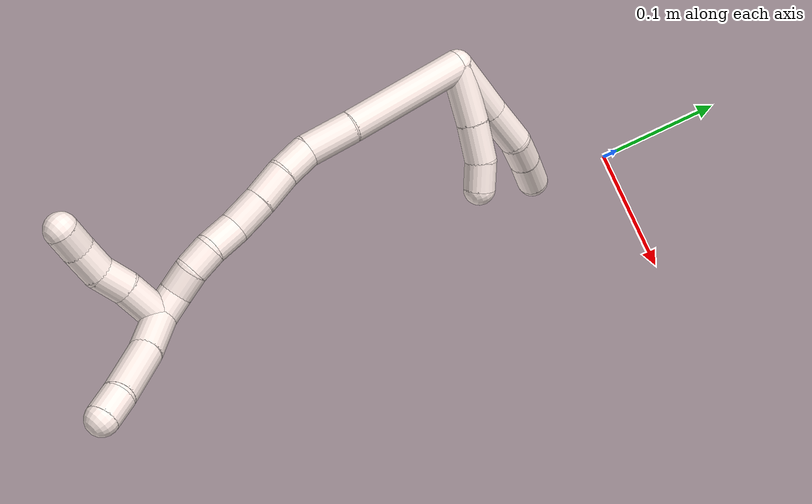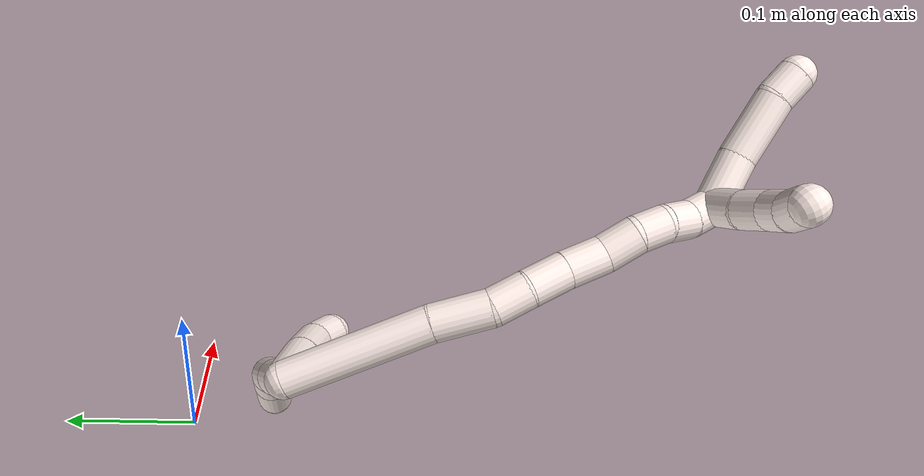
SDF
<sdf version="1.7">
 <world name="default">
  <model name="11">
   <static>0</static>
   <link name="11">
    <collision name="collision-cylinder-e_1_2_8">
     <pose>0.016928 -0.019171 -0.004304 1.79166 0.711177 0.868874</pose>
     <geometry><cylinder><radius>0.0125</radius><length>0.05187</length></cylinder></geometry>
     <surface>
      <friction><ode><mu>1.16</mu><mu2>1.16</mu2><slip1>0</slip1><slip2>0</slip2></ode></friction>
      <contact><ode><kp>1e+06</kp><kd>1</kd><max_vel>0</max_vel><min_depth>0.001</min_depth></ode></contact>
     </surface>
    </collision>
    <visual name="visual-cylinder-e_1_2_8">
     <pose>0.016928 -0.019171 -0.004304 1.79166 0.711177 0.868874</pose>
     <geometry><cylinder><radius>0.0125</radius><length>0.05187</length></cylinder></geometry>
     <material><ambient>1 0.933333 0.909804 1</ambient></material>
    </visual>
    <collision name="collision-cylinder-e_2_8_9">
     <pose>0.046234 -0.051642 -0.011946 1.81662 0.734256 0.916011</pose>
     <geometry><cylinder><radius>0.0125</radius><length>0.036946</length></cylinder></geometry>
     <surface>
      <friction><ode><mu>1.16</mu><mu2>1.16</mu2><slip1>0</slip1><slip2>0</slip2></ode></friction>
      <contact><ode><kp>1e+06</kp><kd>1</kd><max_vel>0</max_vel><min_depth>0.001</min_depth></ode></contact>
     </surface>
    </collision>
    <visual name="visual-cylinder-e_2_8_9">
     <pose>0.046234 -0.051642 -0.011946 1.81662 0.734256 0.916011</pose>
     <geometry><cylinder><radius>0.0125</radius><length>0.036946</length></cylinder></geometry>
     <material><ambient>1 0.933333 0.909804 1</ambient></material>
    </visual>
    <collision name="collision-cylinder-e_3_9_10">
     <pose>0.064056 -0.077329 -0.017603 1.75593 0.407824 0.488279</pose>
     <geometry><cylinder><radius>0.0125</radius><length>0.027454</length></cylinder></geometry>
     <surface>
      <friction><ode><mu>1.16</mu><mu2>1.16</mu2><slip1>0</slip1><slip2>0</slip2></ode></friction>
      <contact><ode><kp>1e+06</kp><kd>1</kd><max_vel>0</max_vel><min_depth>0.001</min_depth></ode></contact>
     </surface>
    </collision>
    <visual name="visual-cylinder-e_3_9_10">
     <pose>0.064056 -0.077329 -0.017603 1.75593 0.407824 0.488279</pose>
     <geometry><cylinder><radius>0.0125</radius><length>0.027454</length></cylinder></geometry>
     <material><ambient>1 0.933333 0.909804 1</ambient></material>
    </visual>
    <collision name="collision-cylinder-e_4_10_6">
     <pose>0.075053 -0.10537 -0.022845 1.75535 0.335492 0.402236</pose>
     <geometry><cylinder><radius>0.0125</radius><length>0.03373</length></cylinder></geometry>
     <surface>
      <friction><ode><mu>1.16</mu><mu2>1.16</mu2><slip1>0</slip1><slip2>0</slip2></ode></friction>
      <contact><ode><kp>1e+06</kp><kd>1</kd><max_vel>0</max_vel><min_depth>0.001</min_depth></ode></contact>
     </surface>
    </collision>
    <visual name="visual-cylinder-e_4_10_6">
     <pose>0.075053 -0.10537 -0.022845 1.75535 0.335492 0.402236</pose>
     <geometry><cylinder><radius>0.0125</radius><length>0.03373</length></cylinder></geometry>
     <material><ambient>1 0.933333 0.909804 1</ambient></material>
    </visual>
    <collision name="collision-cylinder-e_1_2_11">
     <pose>0.016303 -0.014422 0.006963 1.12099 0.794305 0.514833</pose>
     <geometry><cylinder><radius>0.0125</radius><length>0.045706</length></cylinder></geometry>
     <surface>
      <friction><ode><mu>1.16</mu><mu2>1.16</mu2><slip1>0</slip1><slip2>0</slip2></ode></friction>
      <contact><ode><kp>1e+06</kp><kd>1</kd><max_vel>0</max_vel><min_depth>0.001</min_depth></ode></contact>
     </surface>
    </collision>
    <visual name="visual-cylinder-e_1_2_11">
     <pose>0.016303 -0.014422 0.006963 1.12099 0.794305 0.514833</pose>
     <geometry><cylinder><radius>0.0125</radius><length>0.045706</length></cylinder></geometry>
     <material><ambient>1 0.933333 0.909804 1</ambient></material>
    </visual>
    <collision name="collision-cylinder-e_2_11_12">
     <pose>0.043153 -0.039097 0.019199 1.09583 0.740939 0.465448</pose>
     <geometry><cylinder><radius>0.0125</radius><length>0.031251</length></cylinder></geometry>
     <surface>
      <friction><ode><mu>1.16</mu><mu2>1.16</mu2><slip1>0</slip1><slip2>0</slip2></ode></friction>
      <contact><ode><kp>1e+06</kp><kd>1</kd><max_vel>0</max_vel><min_depth>0.001</min_depth></ode></contact>
     </surface>
    </collision>
    <visual name="visual-cylinder-e_2_11_12">
     <pose>0.043153 -0.039097 0.019199 1.09583 0.740939 0.465448</pose>
     <geometry><cylinder><radius>0.0125</radius><length>0.031251</length></cylinder></geometry>
     <material><ambient>1 0.933333 0.909804 1</ambient></material>
    </visual>
    <collision name="collision-cylinder-e_3_12_5">
     <pose>0.05959 -0.057072 0.030669 0.894515 0.536668 0.262275</pose>
     <geometry><cylinder><radius>0.0125</radius><length>0.023043</length></cylinder></geometry>
     <surface>
      <friction><ode><mu>1.16</mu><mu2>1.16</mu2><slip1>0</slip1><slip2>0</slip2></ode></friction>
      <contact><ode><kp>1e+06</kp><kd>1</kd><max_vel>0</max_vel><min_depth>0.001</min_depth></ode></contact>
     </surface>
    </collision>
    <visual name="visual-cylinder-e_3_12_5">
     <pose>0.05959 -0.057072 0.030669 0.894515 0.536668 0.262275</pose>
     <geometry><cylinder><radius>0.0125</radius><length>0.023043</length></cylinder></geometry>
     <material><ambient>1 0.933333 0.909804 1</ambient></material>
    </visual>
    <collision name="collision-cylinder-e_1_2_13">
     <pose>-0.010584 0.002696 0.048643 -0.055357 -0.213924 0.005945</pose>
     <geometry><cylinder><radius>0.0125</radius><length>0.099709</length></cylinder></geometry>
     <surface>
      <friction><ode><mu>1.16</mu><mu2>1.16</mu2><slip1>0</slip1><slip2>0</slip2></ode></friction>
      <contact><ode><kp>1e+06</kp><kd>1</kd><max_vel>0</max_vel><min_depth>0.001</min_depth></ode></contact>
     </surface>
    </collision>
    <visual name="visual-cylinder-e_1_2_13">
     <pose>-0.010584 0.002696 0.048643 -0.055357 -0.213924 0.005945</pose>
     <geometry><cylinder><radius>0.0125</radius><length>0.099709</length></cylinder></geometry>
     <material><ambient>1 0.933333 0.909804 1</ambient></material>
    </visual>
    <collision name="collision-cylinder-e_2_13_14">
     <pose>-0.026433 0.004623 0.115623 0.04186 -0.27938 -0.005887</pose>
     <geometry><cylinder><radius>0.0125</radius><length>0.038185</length></cylinder></geometry>
     <surface>
      <friction><ode><mu>1.16</mu><mu2>1.16</mu2><slip1>0</slip1><slip2>0</slip2></ode></friction>
      <contact><ode><kp>1e+06</kp><kd>1</kd><max_vel>0</max_vel><min_depth>0.001</min_depth></ode></contact>
     </surface>
    </collision>
    <visual name="visual-cylinder-e_2_13_14">
     <pose>-0.026433 0.004623 0.115623 0.04186 -0.27938 -0.005887</pose>
     <geometry><cylinder><radius>0.0125</radius><length>0.038185</length></cylinder></geometry>
     <material><ambient>1 0.933333 0.909804 1</ambient></material>
    </visual>
    <collision name="collision-cylinder-e_3_14_15">
     <pose>-0.031846 0.003556 0.146242 0.024381 -0.012076 -0.000147</pose>
     <geometry><cylinder><radius>0.0125</radius><length>0.024575</length></cylinder></geometry>
     <surface>
      <friction><ode><mu>1.16</mu><mu2>1.16</mu2><slip1>0</slip1><slip2>0</slip2></ode></friction>
      <contact><ode><kp>1e+06</kp><kd>1</kd><max_vel>0</max_vel><min_depth>0.001</min_depth></ode></contact>
     </surface>
    </collision>
    <visual name="visual-cylinder-e_3_14_15">
     <pose>-0.031846 0.003556 0.146242 0.024381 -0.012076 -0.000147</pose>
     <geometry><cylinder><radius>0.0125</radius><length>0.024575</length></cylinder></geometry>
     <material><ambient>1 0.933333 0.909804 1</ambient></material>
    </visual>
    <collision name="collision-cylinder-e_4_15_16">
     <pose>-0.031088 0.001109 0.17149 0.164099 0.068833 0.005663</pose>
     <geometry><cylinder><radius>0.0125</radius><length>0.026345</length></cylinder></geometry>
     <surface>
      <friction><ode><mu>1.16</mu><mu2>1.16</mu2><slip1>0</slip1><slip2>0</slip2></ode></friction>
      <contact><ode><kp>1e+06</kp><kd>1</kd><max_vel>0</max_vel><min_depth>0.001</min_depth></ode></contact>
     </surface>
    </collision>
    <visual name="visual-cylinder-e_4_15_16">
     <pose>-0.031088 0.001109 0.17149 0.164099 0.068833 0.005663</pose>
     <geometry><cylinder><radius>0.0125</radius><length>0.026345</length></cylinder></geometry>
     <material><ambient>1 0.933333 0.909804 1</ambient></material>
    </visual>
    <collision name="collision-cylinder-e_5_16_17">
     <pose>-0.03023 -0.003489 0.197759 0.18224 -0.003481 -0.000318</pose>
     <geometry><cylinder><radius>0.0125</radius><length>0.027058</length></cylinder></geometry>
     <surface>
      <friction><ode><mu>1.16</mu><mu2>1.16</mu2><slip1>0</slip1><slip2>0</slip2></ode></friction>
      <contact><ode><kp>1e+06</kp><kd>1</kd><max_vel>0</max_vel><min_depth>0.001</min_depth></ode></contact>
     </surface>
    </collision>
    <visual name="visual-cylinder-e_5_16_17">
     <pose>-0.03023 -0.003489 0.197759 0.18224 -0.003481 -0.000318</pose>
     <geometry><cylinder><radius>0.0125</radius><length>0.027058</length></cylinder></geometry>
     <material><ambient>1 0.933333 0.909804 1</ambient></material>
    </visual>
    <collision name="collision-cylinder-e_6_17_18">
     <pose>-0.030516 -0.005034 0.223056 -0.075527 -0.019905 0.000752</pose>
     <geometry><cylinder><radius>0.0125</radius><length>0.024057</length></cylinder></geometry>
     <surface>
      <friction><ode><mu>1.16</mu><mu2>1.16</mu2><slip1>0</slip1><slip2>0</slip2></ode></friction>
      <contact><ode><kp>1e+06</kp><kd>1</kd><max_vel>0</max_vel><min_depth>0.001</min_depth></ode></contact>
     </surface>
    </collision>
    <visual name="visual-cylinder-e_6_17_18">
     <pose>-0.030516 -0.005034 0.223056 -0.075527 -0.019905 0.000752</pose>
     <geometry><cylinder><radius>0.0125</radius><length>0.024057</length></cylinder></geometry>
     <material><ambient>1 0.933333 0.909804 1</ambient></material>
    </visual>
    <collision name="collision-cylinder-e_7_18_19">
     <pose>-0.03065 -0.006498 0.24479 0.23877 0.010476 0.001257</pose>
     <geometry><cylinder><radius>0.0125</radius><length>0.020053</length></cylinder></geometry>
     <surface>
      <friction><ode><mu>1.16</mu><mu2>1.16</mu2><slip1>0</slip1><slip2>0</slip2></ode></friction>
      <contact><ode><kp>1e+06</kp><kd>1</kd><max_vel>0</max_vel><min_depth>0.001</min_depth></ode></contact>
     </surface>
    </collision>
    <visual name="visual-cylinder-e_7_18_19">
     <pose>-0.03065 -0.006498 0.24479 0.23877 0.010476 0.001257</pose>
     <geometry><cylinder><radius>0.0125</radius><length>0.020053</length></cylinder></geometry>
     <material><ambient>1 0.933333 0.909804 1</ambient></material>
    </visual>
    <collision name="collision-cylinder-e_8_19_20">
     <pose>-0.02994 -0.013989 0.2631 0.538647 0.060585 0.016728</pose>
     <geometry><cylinder><radius>0.0125</radius><length>0.02</length></cylinder></geometry>
     <surface>
      <friction><ode><mu>1.16</mu><mu2>1.16</mu2><slip1>0</slip1><slip2>0</slip2></ode></friction>
      <contact><ode><kp>1e+06</kp><kd>1</kd><max_vel>0</max_vel><min_depth>0.001</min_depth></ode></contact>
     </surface>
    </collision>
    <visual name="visual-cylinder-e_8_19_20">
     <pose>-0.02994 -0.013989 0.2631 0.538647 0.060585 0.016728</pose>
     <geometry><cylinder><radius>0.0125</radius><length>0.02</length></cylinder></geometry>
     <material><ambient>1 0.933333 0.909804 1</ambient></material>
    </visual>
    <collision name="collision-cylinder-e_9_20_1">
     <pose>-0.027768 -0.021629 0.281227 0.257658 0.157153 0.0204</pose>
     <geometry><cylinder><radius>0.0125</radius><length>0.020018</length></cylinder></geometry>
     <surface>
      <friction><ode><mu>1.16</mu><mu2>1.16</mu2><slip1>0</slip1><slip2>0</slip2></ode></friction>
      <contact><ode><kp>1e+06</kp><kd>1</kd><max_vel>0</max_vel><min_depth>0.001</min_depth></ode></contact>
     </surface>
    </collision>
    <visual name="visual-cylinder-e_9_20_1">
     <pose>-0.027768 -0.021629 0.281227 0.257658 0.157153 0.0204</pose>
     <geometry><cylinder><radius>0.0125</radius><length>0.020018</length></cylinder></geometry>
     <material><ambient>1 0.933333 0.909804 1</ambient></material>
    </visual>
    <collision name="collision-cylinder-e_1_1_21">
     <pose>-0.039411 -0.014439 0.293673 -1.28183 -0.916621 0.705277</pose>
     <geometry><cylinder><radius>0.0125</radius><length>0.033292</length></cylinder></geometry>
     <surface>
      <friction><ode><mu>1.16</mu><mu2>1.16</mu2><slip1>0</slip1><slip2>0</slip2></ode></friction>
      <contact><ode><kp>1e+06</kp><kd>1</kd><max_vel>0</max_vel><min_depth>0.001</min_depth></ode></contact>
     </surface>
    </collision>
    <visual name="visual-cylinder-e_1_1_21">
     <pose>-0.039411 -0.014439 0.293673 -1.28183 -0.916621 0.705277</pose>
     <geometry><cylinder><radius>0.0125</radius><length>0.033292</length></cylinder></geometry>
     <material><ambient>1 0.933333 0.909804 1</ambient></material>
    </visual>
    <collision name="collision-cylinder-e_2_21_22">
     <pose>-0.061523 0.001387 0.300278 -1.02451 -0.893616 0.526348</pose>
     <geometry><cylinder><radius>0.0125</radius><length>0.022847</length></cylinder></geometry>
     <surface>
      <friction><ode><mu>1.16</mu><mu2>1.16</mu2><slip1>0</slip1><slip2>0</slip2></ode></friction>
      <contact><ode><kp>1e+06</kp><kd>1</kd><max_vel>0</max_vel><min_depth>0.001</min_depth></ode></contact>
     </surface>
    </collision>
    <visual name="visual-cylinder-e_2_21_22">
     <pose>-0.061523 0.001387 0.300278 -1.02451 -0.893616 0.526348</pose>
     <geometry><cylinder><radius>0.0125</radius><length>0.022847</length></cylinder></geometry>
     <material><ambient>1 0.933333 0.909804 1</ambient></material>
    </visual>
    <collision name="collision-cylinder-e_3_22_23">
     <pose>-0.078879 0.015314 0.304917 -1.45343 -0.821376 0.738712</pose>
     <geometry><cylinder><radius>0.0125</radius><length>0.023092</length></cylinder></geometry>
     <surface>
      <friction><ode><mu>1.16</mu><mu2>1.16</mu2><slip1>0</slip1><slip2>0</slip2></ode></friction>
      <contact><ode><kp>1e+06</kp><kd>1</kd><max_vel>0</max_vel><min_depth>0.001</min_depth></ode></contact>
     </surface>
    </collision>
    <visual name="visual-cylinder-e_3_22_23">
     <pose>-0.078879 0.015314 0.304917 -1.45343 -0.821376 0.738712</pose>
     <geometry><cylinder><radius>0.0125</radius><length>0.023092</length></cylinder></geometry>
     <material><ambient>1 0.933333 0.909804 1</ambient></material>
    </visual>
    <collision name="collision-cylinder-e_4_23_4">
     <pose>-0.093583 0.031359 0.306827 -1.45127 -0.645969 0.577241</pose>
     <geometry><cylinder><radius>0.0125</radius><length>0.020769</length></cylinder></geometry>
     <surface>
      <friction><ode><mu>1.16</mu><mu2>1.16</mu2><slip1>0</slip1><slip2>0</slip2></ode></friction>
      <contact><ode><kp>1e+06</kp><kd>1</kd><max_vel>0</max_vel><min_depth>0.001</min_depth></ode></contact>
     </surface>
    </collision>
    <visual name="visual-cylinder-e_4_23_4">
     <pose>-0.093583 0.031359 0.306827 -1.45127 -0.645969 0.577241</pose>
     <geometry><cylinder><radius>0.0125</radius><length>0.020769</length></cylinder></geometry>
     <material><ambient>1 0.933333 0.909804 1</ambient></material>
    </visual>
    <collision name="collision-cylinder-e_1_1_24">
     <pose>-0.018715 -0.017821 0.305463 -0.406987 0.438082 -0.091808</pose>
     <geometry><cylinder><radius>0.0125</radius><length>0.035299</length></cylinder></geometry>
     <surface>
      <friction><ode><mu>1.16</mu><mu2>1.16</mu2><slip1>0</slip1><slip2>0</slip2></ode></friction>
      <contact><ode><kp>1e+06</kp><kd>1</kd><max_vel>0</max_vel><min_depth>0.001</min_depth></ode></contact>
     </surface>
    </collision>
    <visual name="visual-cylinder-e_1_1_24">
     <pose>-0.018715 -0.017821 0.305463 -0.406987 0.438082 -0.091808</pose>
     <geometry><cylinder><radius>0.0125</radius><length>0.035299</length></cylinder></geometry>
     <material><ambient>1 0.933333 0.909804 1</ambient></material>
    </visual>
    <collision name="collision-cylinder-e_2_24_25">
     <pose>-0.004392 -0.002731 0.338984 -0.435343 0.317781 -0.070853</pose>
     <geometry><cylinder><radius>0.0125</radius><length>0.043753</length></cylinder></geometry>
     <surface>
      <friction><ode><mu>1.16</mu><mu2>1.16</mu2><slip1>0</slip1><slip2>0</slip2></ode></friction>
      <contact><ode><kp>1e+06</kp><kd>1</kd><max_vel>0</max_vel><min_depth>0.001</min_depth></ode></contact>
     </surface>
    </collision>
    <visual name="visual-cylinder-e_2_24_25">
     <pose>-0.004392 -0.002731 0.338984 -0.435343 0.317781 -0.070853</pose>
     <geometry><cylinder><radius>0.0125</radius><length>0.043753</length></cylinder></geometry>
     <material><ambient>1 0.933333 0.909804 1</ambient></material>
    </visual>
    <collision name="collision-cylinder-e_3_25_3">
     <pose>0.004852 0.008223 0.367782 -0.216468 0.23201 -0.025322</pose>
     <geometry><cylinder><radius>0.0125</radius><length>0.020948</length></cylinder></geometry>
     <surface>
      <friction><ode><mu>1.16</mu><mu2>1.16</mu2><slip1>0</slip1><slip2>0</slip2></ode></friction>
      <contact><ode><kp>1e+06</kp><kd>1</kd><max_vel>0</max_vel><min_depth>0.001</min_depth></ode></contact>
     </surface>
    </collision>
    <visual name="visual-cylinder-e_3_25_3">
     <pose>0.004852 0.008223 0.367782 -0.216468 0.23201 -0.025322</pose>
     <geometry><cylinder><radius>0.0125</radius><length>0.020948</length></cylinder></geometry>
     <material><ambient>1 0.933333 0.909804 1</ambient></material>
    </visual>
    <collision name="collision-sphere-3">
     <pose>0.00726 0.010412 0.377737 0 -0 0</pose>
     <geometry><sphere><radius>0.0125</radius></sphere></geometry>
     <surface>
      <friction><ode><mu>1.16</mu><mu2>1.16</mu2><slip1>0</slip1><slip2>0</slip2></ode></friction>
      <contact><ode><kp>1e+06</kp><kd>1</kd><max_vel>0</max_vel><min_depth>0.001</min_depth></ode></contact>
     </surface>
    </collision>
    <visual name="visual-sphere-3">
     <pose>0.00726 0.010412 0.377737 0 -0 0</pose>
     <geometry><sphere><radius>0.0125</radius></sphere></geometry>
     <material><ambient>1 0.933333 0.909804 1</ambient></material>
    </visual>
    <collision name="collision-sphere-25">
     <pose>0.002443 0.006033 0.357826 0 -0 0</pose>
     <geometry><sphere><radius>0.0125</radius></sphere></geometry>
     <surface>
      <friction><ode><mu>1.16</mu><mu2>1.16</mu2><slip1>0</slip1><slip2>0</slip2></ode></friction>
      <contact><ode><kp>1e+06</kp><kd>1</kd><max_vel>0</max_vel><min_depth>0.001</min_depth></ode></contact>
     </surface>
    </collision>
    <visual name="visual-sphere-25">
     <pose>0.002443 0.006033 0.357826 0 -0 0</pose>
     <geometry><sphere><radius>0.0125</radius></sphere></geometry>
     <material><ambient>1 0.933333 0.909804 1</ambient></material>
    </visual>
    <collision name="collision-sphere-24">
     <pose>-0.011228 -0.011494 0.320141 0 -0 0</pose>
     <geometry><sphere><radius>0.0125</radius></sphere></geometry>
     <surface>
      <friction><ode><mu>1.16</mu><mu2>1.16</mu2><slip1>0</slip1><slip2>0</slip2></ode></friction>
      <contact><ode><kp>1e+06</kp><kd>1</kd><max_vel>0</max_vel><min_depth>0.001</min_depth></ode></contact>
     </surface>
    </collision>
    <visual name="visual-sphere-24">
     <pose>-0.011228 -0.011494 0.320141 0 -0 0</pose>
     <geometry><sphere><radius>0.0125</radius></sphere></geometry>
     <material><ambient>1 0.933333 0.909804 1</ambient></material>
    </visual>
    <collision name="collision-sphere-4">
     <pose>-0.099834 0.039591 0.307816 0 -0 0</pose>
     <geometry><sphere><radius>0.0125</radius></sphere></geometry>
     <surface>
      <friction><ode><mu>1.16</mu><mu2>1.16</mu2><slip1>0</slip1><slip2>0</slip2></ode></friction>
      <contact><ode><kp>1e+06</kp><kd>1</kd><max_vel>0</max_vel><min_depth>0.001</min_depth></ode></contact>
     </surface>
    </collision>
    <visual name="visual-sphere-4">
     <pose>-0.099834 0.039591 0.307816 0 -0 0</pose>
     <geometry><sphere><radius>0.0125</radius></sphere></geometry>
     <material><ambient>1 0.933333 0.909804 1</ambient></material>
    </visual>
    <collision name="collision-sphere-23">
     <pose>-0.087332 0.023126 0.305838 0 -0 0</pose>
     <geometry><sphere><radius>0.0125</radius></sphere></geometry>
     <surface>
      <friction><ode><mu>1.16</mu><mu2>1.16</mu2><slip1>0</slip1><slip2>0</slip2></ode></friction>
      <contact><ode><kp>1e+06</kp><kd>1</kd><max_vel>0</max_vel><min_depth>0.001</min_depth></ode></contact>
     </surface>
    </collision>
    <visual name="visual-sphere-23">
     <pose>-0.087332 0.023126 0.305838 0 -0 0</pose>
     <geometry><sphere><radius>0.0125</radius></sphere></geometry>
     <material><ambient>1 0.933333 0.909804 1</ambient></material>
    </visual>
    <collision name="collision-sphere-22">
     <pose>-0.070426 0.007503 0.303996 0 -0 0</pose>
     <geometry><sphere><radius>0.0125</radius></sphere></geometry>
     <surface>
      <friction><ode><mu>1.16</mu><mu2>1.16</mu2><slip1>0</slip1><slip2>0</slip2></ode></friction>
      <contact><ode><kp>1e+06</kp><kd>1</kd><max_vel>0</max_vel><min_depth>0.001</min_depth></ode></contact>
     </surface>
    </collision>
    <visual name="visual-sphere-22">
     <pose>-0.070426 0.007503 0.303996 0 -0 0</pose>
     <geometry><sphere><radius>0.0125</radius></sphere></geometry>
     <material><ambient>1 0.933333 0.909804 1</ambient></material>
    </visual>
    <collision name="collision-sphere-21">
     <pose>-0.05262 -0.004729 0.296559 0 -0 0</pose>
     <geometry><sphere><radius>0.0125</radius></sphere></geometry>
     <surface>
      <friction><ode><mu>1.16</mu><mu2>1.16</mu2><slip1>0</slip1><slip2>0</slip2></ode></friction>
      <contact><ode><kp>1e+06</kp><kd>1</kd><max_vel>0</max_vel><min_depth>0.001</min_depth></ode></contact>
     </surface>
    </collision>
    <visual name="visual-sphere-21">
     <pose>-0.05262 -0.004729 0.296559 0 -0 0</pose>
     <geometry><sphere><radius>0.0125</radius></sphere></geometry>
     <material><ambient>1 0.933333 0.909804 1</ambient></material>
    </visual>
    <collision name="collision-sphere-1">
     <pose>-0.026202 -0.024148 0.290786 0 -0 0</pose>
     <geometry><sphere><radius>0.0125</radius></sphere></geometry>
     <surface>
      <friction><ode><mu>1.16</mu><mu2>1.16</mu2><slip1>0</slip1><slip2>0</slip2></ode></friction>
      <contact><ode><kp>1e+06</kp><kd>1</kd><max_vel>0</max_vel><min_depth>0.001</min_depth></ode></contact>
     </surface>
    </collision>
    <visual name="visual-sphere-1">
     <pose>-0.026202 -0.024148 0.290786 0 -0 0</pose>
     <geometry><sphere><radius>0.0125</radius></sphere></geometry>
     <material><ambient>1 0.933333 0.909804 1</ambient></material>
    </visual>
    <collision name="collision-sphere-11">
     <pose>0.032606 -0.028844 0.013926 0 -0 0</pose>
     <geometry><sphere><radius>0.0125</radius></sphere></geometry>
     <surface>
      <friction><ode><mu>1.16</mu><mu2>1.16</mu2><slip1>0</slip1><slip2>0</slip2></ode></friction>
      <contact><ode><kp>1e+06</kp><kd>1</kd><max_vel>0</max_vel><min_depth>0.001</min_depth></ode></contact>
     </surface>
    </collision>
    <visual name="visual-sphere-11">
     <pose>0.032606 -0.028844 0.013926 0 -0 0</pose>
     <geometry><sphere><radius>0.0125</radius></sphere></geometry>
     <material><ambient>1 0.933333 0.909804 1</ambient></material>
    </visual>
    <collision name="collision-sphere-6">
     <pose>0.080606 -0.121024 -0.025767 0 -0 0</pose>
     <geometry><sphere><radius>0.0125</radius></sphere></geometry>
     <surface>
      <friction><ode><mu>1.16</mu><mu2>1.16</mu2><slip1>0</slip1><slip2>0</slip2></ode></friction>
      <contact><ode><kp>1e+06</kp><kd>1</kd><max_vel>0</max_vel><min_depth>0.001</min_depth></ode></contact>
     </surface>
    </collision>
    <visual name="visual-sphere-6">
     <pose>0.080606 -0.121024 -0.025767 0 -0 0</pose>
     <geometry><sphere><radius>0.0125</radius></sphere></geometry>
     <material><ambient>1 0.933333 0.909804 1</ambient></material>
    </visual>
    <collision name="collision-sphere-10">
     <pose>0.069501 -0.089715 -0.019922 0 -0 0</pose>
     <geometry><sphere><radius>0.0125</radius></sphere></geometry>
     <surface>
      <friction><ode><mu>1.16</mu><mu2>1.16</mu2><slip1>0</slip1><slip2>0</slip2></ode></friction>
      <contact><ode><kp>1e+06</kp><kd>1</kd><max_vel>0</max_vel><min_depth>0.001</min_depth></ode></contact>
     </surface>
    </collision>
    <visual name="visual-sphere-10">
     <pose>0.069501 -0.089715 -0.019922 0 -0 0</pose>
     <geometry><sphere><radius>0.0125</radius></sphere></geometry>
     <material><ambient>1 0.933333 0.909804 1</ambient></material>
    </visual>
    <collision name="collision-sphere-9">
     <pose>0.058612 -0.064943 -0.015283 0 -0 0</pose>
     <geometry><sphere><radius>0.0125</radius></sphere></geometry>
     <surface>
      <friction><ode><mu>1.16</mu><mu2>1.16</mu2><slip1>0</slip1><slip2>0</slip2></ode></friction>
      <contact><ode><kp>1e+06</kp><kd>1</kd><max_vel>0</max_vel><min_depth>0.001</min_depth></ode></contact>
     </surface>
    </collision>
    <visual name="visual-sphere-9">
     <pose>0.058612 -0.064943 -0.015283 0 -0 0</pose>
     <geometry><sphere><radius>0.0125</radius></sphere></geometry>
     <material><ambient>1 0.933333 0.909804 1</ambient></material>
    </visual>
    <collision name="collision-sphere-2">
     <geometry><sphere><radius>0.0125</radius></sphere></geometry>
     <surface>
      <friction><ode><mu>1.16</mu><mu2>1.16</mu2><slip1>0</slip1><slip2>0</slip2></ode></friction>
      <contact><ode><kp>1e+06</kp><kd>1</kd><max_vel>0</max_vel><min_depth>0.001</min_depth></ode></contact>
     </surface>
    </collision>
    <visual name="visual-sphere-2">
     <geometry><sphere><radius>0.0125</radius></sphere></geometry>
     <material><ambient>1 0.933333 0.909804 1</ambient></material>
    </visual>
    <collision name="collision-sphere-19">
     <pose>-0.030545 -0.008869 0.254531 0 -0 0</pose>
     <geometry><sphere><radius>0.0125</radius></sphere></geometry>
     <surface>
      <friction><ode><mu>1.16</mu><mu2>1.16</mu2><slip1>0</slip1><slip2>0</slip2></ode></friction>
      <contact><ode><kp>1e+06</kp><kd>1</kd><max_vel>0</max_vel><min_depth>0.001</min_depth></ode></contact>
     </surface>
    </collision>
    <visual name="visual-sphere-19">
     <pose>-0.030545 -0.008869 0.254531 0 -0 0</pose>
     <geometry><sphere><radius>0.0125</radius></sphere></geometry>
     <material><ambient>1 0.933333 0.909804 1</ambient></material>
    </visual>
    <collision name="collision-sphere-8">
     <pose>0.033857 -0.038342 -0.008609 0 -0 0</pose>
     <geometry><sphere><radius>0.0125</radius></sphere></geometry>
     <surface>
      <friction><ode><mu>1.16</mu><mu2>1.16</mu2><slip1>0</slip1><slip2>0</slip2></ode></friction>
      <contact><ode><kp>1e+06</kp><kd>1</kd><max_vel>0</max_vel><min_depth>0.001</min_depth></ode></contact>
     </surface>
    </collision>
    <visual name="visual-sphere-8">
     <pose>0.033857 -0.038342 -0.008609 0 -0 0</pose>
     <geometry><sphere><radius>0.0125</radius></sphere></geometry>
     <material><ambient>1 0.933333 0.909804 1</ambient></material>
    </visual>
    <collision name="collision-sphere-12">
     <pose>0.0537 -0.04935 0.024471 0 -0 0</pose>
     <geometry><sphere><radius>0.0125</radius></sphere></geometry>
     <surface>
      <friction><ode><mu>1.16</mu><mu2>1.16</mu2><slip1>0</slip1><slip2>0</slip2></ode></friction>
      <contact><ode><kp>1e+06</kp><kd>1</kd><max_vel>0</max_vel><min_depth>0.001</min_depth></ode></contact>
     </surface>
    </collision>
    <visual name="visual-sphere-12">
     <pose>0.0537 -0.04935 0.024471 0 -0 0</pose>
     <geometry><sphere><radius>0.0125</radius></sphere></geometry>
     <material><ambient>1 0.933333 0.909804 1</ambient></material>
    </visual>
    <collision name="collision-sphere-5">
     <pose>0.065481 -0.064794 0.036866 0 -0 0</pose>
     <geometry><sphere><radius>0.0125</radius></sphere></geometry>
     <surface>
      <friction><ode><mu>1.16</mu><mu2>1.16</mu2><slip1>0</slip1><slip2>0</slip2></ode></friction>
      <contact><ode><kp>1e+06</kp><kd>1</kd><max_vel>0</max_vel><min_depth>0.001</min_depth></ode></contact>
     </surface>
    </collision>
    <visual name="visual-sphere-5">
     <pose>0.065481 -0.064794 0.036866 0 -0 0</pose>
     <geometry><sphere><radius>0.0125</radius></sphere></geometry>
     <material><ambient>1 0.933333 0.909804 1</ambient></material>
    </visual>
    <collision name="collision-sphere-13">
     <pose>-0.021168 0.005391 0.097287 0 -0 0</pose>
     <geometry><sphere><radius>0.0125</radius></sphere></geometry>
     <surface>
      <friction><ode><mu>1.16</mu><mu2>1.16</mu2><slip1>0</slip1><slip2>0</slip2></ode></friction>
      <contact><ode><kp>1e+06</kp><kd>1</kd><max_vel>0</max_vel><min_depth>0.001</min_depth></ode></contact>
     </surface>
    </collision>
    <visual name="visual-sphere-13">
     <pose>-0.021168 0.005391 0.097287 0 -0 0</pose>
     <geometry><sphere><radius>0.0125</radius></sphere></geometry>
     <material><ambient>1 0.933333 0.909804 1</ambient></material>
    </visual>
    <collision name="collision-sphere-14">
     <pose>-0.031698 0.003855 0.133959 0 -0 0</pose>
     <geometry><sphere><radius>0.0125</radius></sphere></geometry>
     <surface>
      <friction><ode><mu>1.16</mu><mu2>1.16</mu2><slip1>0</slip1><slip2>0</slip2></ode></friction>
      <contact><ode><kp>1e+06</kp><kd>1</kd><max_vel>0</max_vel><min_depth>0.001</min_depth></ode></contact>
     </surface>
    </collision>
    <visual name="visual-sphere-14">
     <pose>-0.031698 0.003855 0.133959 0 -0 0</pose>
     <geometry><sphere><radius>0.0125</radius></sphere></geometry>
     <material><ambient>1 0.933333 0.909804 1</ambient></material>
    </visual>
    <collision name="collision-sphere-15">
     <pose>-0.031994 0.003256 0.158525 0 -0 0</pose>
     <geometry><sphere><radius>0.0125</radius></sphere></geometry>
     <surface>
      <friction><ode><mu>1.16</mu><mu2>1.16</mu2><slip1>0</slip1><slip2>0</slip2></ode></friction>
      <contact><ode><kp>1e+06</kp><kd>1</kd><max_vel>0</max_vel><min_depth>0.001</min_depth></ode></contact>
     </surface>
    </collision>
    <visual name="visual-sphere-15">
     <pose>-0.031994 0.003256 0.158525 0 -0 0</pose>
     <geometry><sphere><radius>0.0125</radius></sphere></geometry>
     <material><ambient>1 0.933333 0.909804 1</ambient></material>
    </visual>
    <collision name="collision-sphere-16">
     <pose>-0.030182 -0.001038 0.184454 0 -0 0</pose>
     <geometry><sphere><radius>0.0125</radius></sphere></geometry>
     <surface>
      <friction><ode><mu>1.16</mu><mu2>1.16</mu2><slip1>0</slip1><slip2>0</slip2></ode></friction>
      <contact><ode><kp>1e+06</kp><kd>1</kd><max_vel>0</max_vel><min_depth>0.001</min_depth></ode></contact>
     </surface>
    </collision>
    <visual name="visual-sphere-16">
     <pose>-0.030182 -0.001038 0.184454 0 -0 0</pose>
     <geometry><sphere><radius>0.0125</radius></sphere></geometry>
     <material><ambient>1 0.933333 0.909804 1</ambient></material>
    </visual>
    <collision name="collision-sphere-17">
     <pose>-0.030277 -0.005941 0.211064 0 -0 0</pose>
     <geometry><sphere><radius>0.0125</radius></sphere></geometry>
     <surface>
      <friction><ode><mu>1.16</mu><mu2>1.16</mu2><slip1>0</slip1><slip2>0</slip2></ode></friction>
      <contact><ode><kp>1e+06</kp><kd>1</kd><max_vel>0</max_vel><min_depth>0.001</min_depth></ode></contact>
     </surface>
    </collision>
    <visual name="visual-sphere-17">
     <pose>-0.030277 -0.005941 0.211064 0 -0 0</pose>
     <geometry><sphere><radius>0.0125</radius></sphere></geometry>
     <material><ambient>1 0.933333 0.909804 1</ambient></material>
    </visual>
    <collision name="collision-sphere-18">
     <pose>-0.030755 -0.004127 0.235048 0 -0 0</pose>
     <geometry><sphere><radius>0.0125</radius></sphere></geometry>
     <surface>
      <friction><ode><mu>1.16</mu><mu2>1.16</mu2><slip1>0</slip1><slip2>0</slip2></ode></friction>
      <contact><ode><kp>1e+06</kp><kd>1</kd><max_vel>0</max_vel><min_depth>0.001</min_depth></ode></contact>
     </surface>
    </collision>
    <visual name="visual-sphere-18">
     <pose>-0.030755 -0.004127 0.235048 0 -0 0</pose>
     <geometry><sphere><radius>0.0125</radius></sphere></geometry>
     <material><ambient>1 0.933333 0.909804 1</ambient></material>
    </visual>
    <collision name="collision-sphere-20">
     <pose>-0.029334 -0.01911 0.271668 0 -0 0</pose>
     <geometry><sphere><radius>0.0125</radius></sphere></geometry>
     <surface>
      <friction><ode><mu>1.16</mu><mu2>1.16</mu2><slip1>0</slip1><slip2>0</slip2></ode></friction>
      <contact><ode><kp>1e+06</kp><kd>1</kd><max_vel>0</max_vel><min_depth>0.001</min_depth></ode></contact>
     </surface>
    </collision>
    <visual name="visual-sphere-20">
     <pose>-0.029334 -0.01911 0.271668 0 -0 0</pose>
     <geometry><sphere><radius>0.0125</radius></sphere></geometry>
     <material><ambient>1 0.933333 0.909804 1</ambient></material>
    </visual>
    <inertial>
     <pose>-0.005171 -0.01639 0.142627 0 -0 0</pose>
     <mass>0.75</mass>
     <inertia>
      <ixx>0.000178</ixx>
      <ixy>0</ixy>
      <ixz>0</ixz>
      <iyy>0.000158</iyy>
      <iyz>0</iyz>
      <izz>4.5e-05</izz>
     </inertia>
    </inertial>
   </link>
   <pose>-0.109674 -0.08682 0.13778 1.17721 -0.19092 0.429666</pose>
  </model>
 </world>
</sdf>
